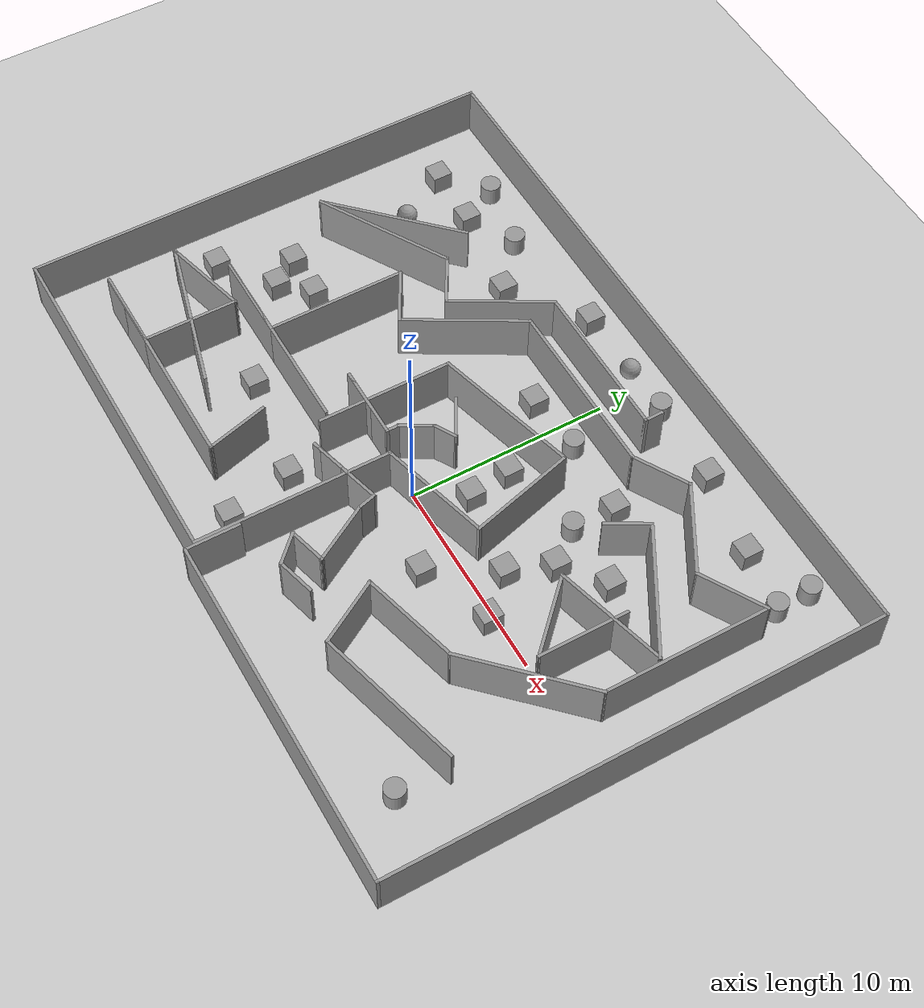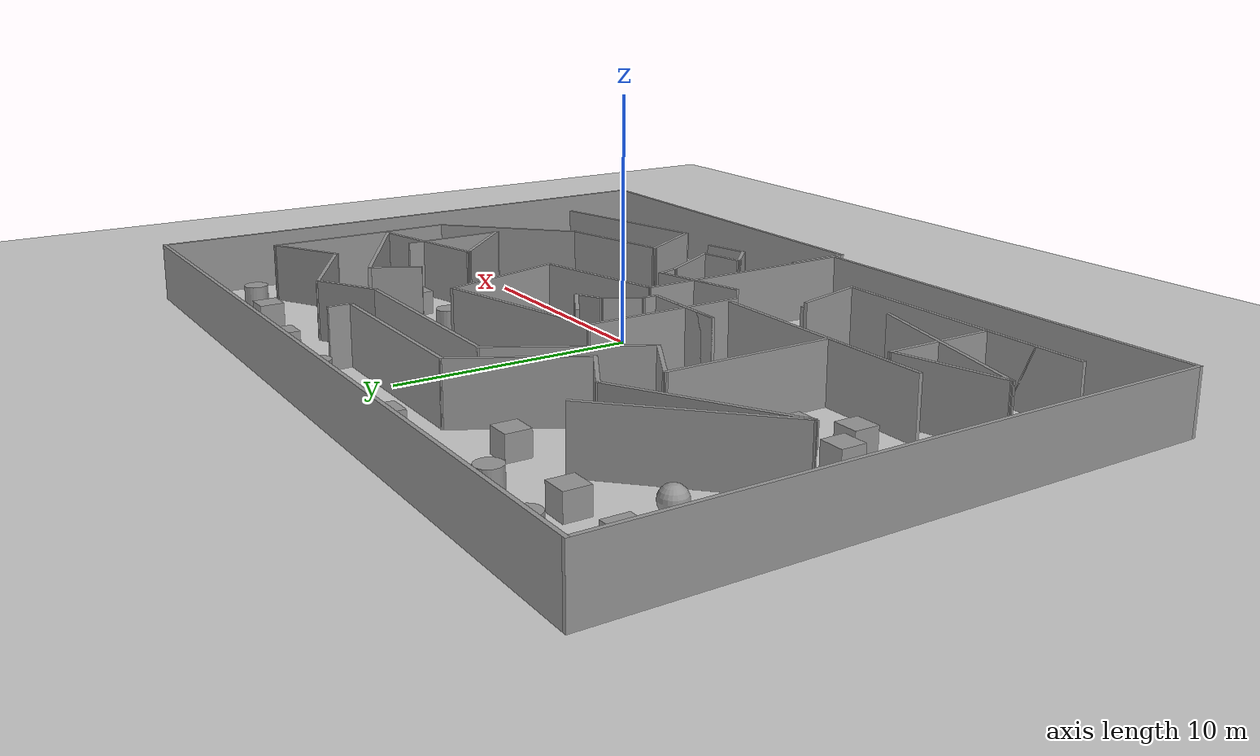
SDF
<sdf version="1.7">
 <world name="default">
  <light name="sun" type="directional">
   <pose>0 0 10 0 -0 0</pose>
   <diffuse>0.8 0.8 0.8 1</diffuse>
   <specular>0.2 0.2 0.2 1</specular>
   <attenuation>
    <range>1000</range>
    <constant>0.9</constant>
    <linear>0.01</linear>
    <quadratic>0.001</quadratic>
   </attenuation>
   <direction>-0.5 0.1 -0.9</direction>
   <spot><inner_angle>0</inner_angle><outer_angle>0</outer_angle><falloff>0</falloff></spot>
  </light>
  <model name="ground_plane">
   <static>1</static>
   <link name="link">
    <collision name="collision">
     <geometry><plane><normal>0 0 1</normal><size>100 100</size></plane></geometry>
     <surface><friction><ode><mu>100</mu><mu2>50</mu2></ode></friction></surface>
    </collision>
    <visual name="visual">
     <cast_shadows>0</cast_shadows>
     <geometry><plane><normal>0 0 1</normal><size>100 100</size></plane></geometry>
     <material>
      <script><uri>file://media/materials/scripts/gazebo.material</uri><name>Gazebo/Grey</name></script>
     </material>
    </visual>
   </link>
  </model>
  <gravity>0 0 -9.8</gravity>
  <magnetic_field>6e-06 2.3e-05 -4.2e-05</magnetic_field>
  <atmosphere type="adiabatic"/>
  <physics name="default_physics" default="0" type="ode">
   <max_step_size>0.001</max_step_size>
   <real_time_factor>1</real_time_factor>
   <real_time_update_rate>1000</real_time_update_rate>
  </physics>
  <scene><ambient>0.4 0.4 0.4 1</ambient><background>0.7 0.7 0.7 1</background><shadows>1</shadows></scene>
  <spherical_coordinates>
   <surface_model>EARTH_WGS84</surface_model>
   <latitude_deg>0</latitude_deg>
   <longitude_deg>0</longitude_deg>
   <elevation>0</elevation>
   <heading_deg>0</heading_deg>
  </spherical_coordinates>
  <model name="Untitled">
   <pose>-1.11495 1.54023 0 0 -0 0</pose>
   <link name="Wall_0">
    <collision name="Wall_0_Collision">
     <geometry><box><size>6.75 0.15 2.5</size></box></geometry>
     <pose>0 0 1.25 0 -0 0</pose>
    </collision>
    <visual name="Wall_0_Visual">
     <pose>0 0 1.25 0 -0 0</pose>
     <geometry><box><size>6.75 0.15 2.5</size></box></geometry>
     <material>
      <script><uri>file://media/materials/scripts/gazebo.material</uri><name>Gazebo/Grey</name></script>
      <ambient>1 1 1 1</ambient>
     </material>
     <meta><layer>0</layer></meta>
    </visual>
    <pose>-3.02505 -0.66023 0 0 -0 1.5708</pose>
   </link>
   <link name="Wall_1">
    <collision name="Wall_1_Collision">
     <geometry><box><size>7.5 0.15 2.5</size></box></geometry>
     <pose>0 0 1.25 0 -0 0</pose>
    </collision>
    <visual name="Wall_1_Visual">
     <pose>0 0 1.25 0 -0 0</pose>
     <geometry><box><size>7.5 0.15 2.5</size></box></geometry>
     <material>
      <script><uri>file://media/materials/scripts/gazebo.material</uri><name>Gazebo/Grey</name></script>
      <ambient>1 1 1 1</ambient>
     </material>
     <meta><layer>0</layer></meta>
    </visual>
    <pose>0.524725 3.59093 0 0 -0 0.261799</pose>
   </link>
   <link name="Wall_10">
    <collision name="Wall_10_Collision">
     <geometry><box><size>2.75 0.15 2.5</size></box></geometry>
     <pose>0 0 1.25 0 -0 0</pose>
    </collision>
    <visual name="Wall_10_Visual">
     <pose>0 0 1.25 0 -0 0</pose>
     <geometry><box><size>2.75 0.15 2.5</size></box></geometry>
     <material>
      <script><uri>file://media/materials/scripts/gazebo.material</uri><name>Gazebo/Grey</name></script>
      <ambient>1 1 1 1</ambient>
     </material>
     <meta><layer>0</layer></meta>
    </visual>
    <pose>0.199999 -10.875 0 0 -0 1.5708</pose>
   </link>
   <link name="Wall_12">
    <collision name="Wall_12_Collision">
     <geometry><box><size>10 0.15 2.5</size></box></geometry>
     <pose>0 0 1.25 0 -0 0</pose>
    </collision>
    <visual name="Wall_12_Visual">
     <pose>0 0 1.25 0 -0 0</pose>
     <geometry><box><size>10 0.15 2.5</size></box></geometry>
     <material>
      <script><uri>file://media/materials/scripts/gazebo.material</uri><name>Gazebo/Grey</name></script>
      <ambient>1 1 1 1</ambient>
     </material>
     <meta><layer>0</layer></meta>
    </visual>
    <pose>-8.27915 -3.51346 0 0 -0 3.14159</pose>
   </link>
   <link name="Wall_13">
    <collision name="Wall_13_Collision">
     <geometry><box><size>4.5 0.15 2.5</size></box></geometry>
     <pose>0 0 1.25 0 -0 0</pose>
    </collision>
    <visual name="Wall_13_Visual">
     <pose>0 0 1.25 0 -0 0</pose>
     <geometry><box><size>4.5 0.15 2.5</size></box></geometry>
     <material>
      <script><uri>file://media/materials/scripts/gazebo.material</uri><name>Gazebo/Grey</name></script>
      <ambient>1 1 1 1</ambient>
     </material>
     <meta><layer>0</layer></meta>
    </visual>
    <pose>-11.0291 -3.51346 0 0 -0 0</pose>
   </link>
   <link name="Wall_14">
    <collision name="Wall_14_Collision">
     <geometry><box><size>7 0.15 2.5</size></box></geometry>
     <pose>0 0 1.25 0 -0 0</pose>
    </collision>
    <visual name="Wall_14_Visual">
     <pose>0 0 1.25 0 -0 0</pose>
     <geometry><box><size>7 0.15 2.5</size></box></geometry>
     <material>
      <script><uri>file://media/materials/scripts/gazebo.material</uri><name>Gazebo/Grey</name></script>
      <ambient>1 1 1 1</ambient>
     </material>
     <meta><layer>0</layer></meta>
    </visual>
    <pose>-8.85415 -0.088459 0 0 -0 1.5708</pose>
   </link>
   <link name="Wall_15">
    <collision name="Wall_15_Collision">
     <geometry><box><size>3 0.15 2.5</size></box></geometry>
     <pose>0 0 1.25 0 -0 0</pose>
    </collision>
    <visual name="Wall_15_Visual">
     <pose>0 0 1.25 0 -0 0</pose>
     <geometry><box><size>3 0.15 2.5</size></box></geometry>
     <material>
      <script><uri>file://media/materials/scripts/gazebo.material</uri><name>Gazebo/Grey</name></script>
      <ambient>1 1 1 1</ambient>
     </material>
     <meta><layer>0</layer></meta>
    </visual>
    <pose>-7.62006 2.62404 0 0 -0 -0.523599</pose>
   </link>
   <link name="Wall_16">
    <collision name="Wall_16_Collision">
     <geometry><box><size>6.25 0.15 2.5</size></box></geometry>
     <pose>0 0 1.25 0 -0 0</pose>
    </collision>
    <visual name="Wall_16_Visual">
     <pose>0 0 1.25 0 -0 0</pose>
     <geometry><box><size>6.25 0.15 2.5</size></box></geometry>
     <material>
      <script><uri>file://media/materials/scripts/gazebo.material</uri><name>Gazebo/Grey</name></script>
      <ambient>1 1 1 1</ambient>
     </material>
     <meta><layer>0</layer></meta>
    </visual>
    <pose>-4.86097 4.55292 0 0 -0 1.0472</pose>
   </link>
   <link name="Wall_17">
    <collision name="Wall_17_Collision">
     <geometry><box><size>9 0.15 2.5</size></box></geometry>
     <pose>0 0 1.25 0 -0 0</pose>
    </collision>
    <visual name="Wall_17_Visual">
     <pose>0 0 1.25 0 -0 0</pose>
     <geometry><box><size>9 0.15 2.5</size></box></geometry>
     <material>
      <script><uri>file://media/materials/scripts/gazebo.material</uri><name>Gazebo/Grey</name></script>
      <ambient>1 1 1 1</ambient>
     </material>
     <meta><layer>0</layer></meta>
    </visual>
    <pose>1.08902 7.1943 0 0 -0 0</pose>
   </link>
   <link name="Wall_18">
    <collision name="Wall_18_Collision">
     <geometry><box><size>3 0.15 2.5</size></box></geometry>
     <pose>0 0 1.25 0 -0 0</pose>
    </collision>
    <visual name="Wall_18_Visual">
     <pose>0 0 1.25 0 -0 0</pose>
     <geometry><box><size>3 0.15 2.5</size></box></geometry>
     <material>
      <script><uri>file://media/materials/scripts/gazebo.material</uri><name>Gazebo/Grey</name></script>
      <ambient>1 1 1 1</ambient>
     </material>
     <meta><layer>0</layer></meta>
    </visual>
    <pose>6.74811 7.9068 0 0 -0 0.523599</pose>
   </link>
   <link name="Wall_19">
    <collision name="Wall_19_Collision">
     <geometry><box><size>4.75 0.15 2.5</size></box></geometry>
     <pose>0 0 1.25 0 -0 0</pose>
    </collision>
    <visual name="Wall_19_Visual">
     <pose>0 0 1.25 0 -0 0</pose>
     <geometry><box><size>4.75 0.15 2.5</size></box></geometry>
     <material>
      <script><uri>file://media/materials/scripts/gazebo.material</uri><name>Gazebo/Grey</name></script>
      <ambient>1 1 1 1</ambient>
     </material>
     <meta><layer>0</layer></meta>
    </visual>
    <pose>9.97406 7.4693 0 0 -0 -0.523599</pose>
   </link>
   <link name="Wall_2">
    <collision name="Wall_2_Collision">
     <geometry><box><size>5.5 0.15 2.5</size></box></geometry>
     <pose>0 0 1.25 0 -0 0</pose>
    </collision>
    <visual name="Wall_2_Visual">
     <pose>0 0 1.25 0 -0 0</pose>
     <geometry><box><size>5.5 0.15 2.5</size></box></geometry>
     <material>
      <script><uri>file://media/materials/scripts/gazebo.material</uri><name>Gazebo/Grey</name></script>
      <ambient>1 1 1 1</ambient>
     </material>
     <meta><layer>0</layer></meta>
    </visual>
    <pose>4.76684 1.95824 0 0 -0 -1.309</pose>
   </link>
   <link name="Wall_20">
    <collision name="Wall_20_Collision">
     <geometry><box><size>3.5 0.15 2.5</size></box></geometry>
     <pose>0 0 1.25 0 -0 0</pose>
    </collision>
    <visual name="Wall_20_Visual">
     <pose>0 0 1.25 0 -0 0</pose>
     <geometry><box><size>3.5 0.15 2.5</size></box></geometry>
     <material>
      <script><uri>file://media/materials/scripts/gazebo.material</uri><name>Gazebo/Grey</name></script>
      <ambient>1 1 1 1</ambient>
     </material>
     <meta><layer>0</layer></meta>
    </visual>
    <pose>13.4165 7.1568 0 0 -0 0.523599</pose>
   </link>
   <link name="Wall_21">
    <collision name="Wall_21_Collision">
     <geometry><box><size>8.25 0.15 2.5</size></box></geometry>
     <pose>0 0 1.25 0 -0 0</pose>
    </collision>
    <visual name="Wall_21_Visual">
     <pose>0 0 1.25 0 -0 0</pose>
     <geometry><box><size>8.25 0.15 2.5</size></box></geometry>
     <material>
      <script><uri>file://media/materials/scripts/gazebo.material</uri><name>Gazebo/Grey</name></script>
      <ambient>1 1 1 1</ambient>
     </material>
     <meta><layer>0</layer></meta>
    </visual>
    <pose>14.8671 3.9443 0 0 -0 -1.5708</pose>
   </link>
   <link name="Wall_22">
    <collision name="Wall_22_Collision">
     <geometry><box><size>6.75 0.15 2.5</size></box></geometry>
     <pose>0 0 1.25 0 -0 0</pose>
    </collision>
    <visual name="Wall_22_Visual">
     <pose>0 0 1.25 0 -0 0</pose>
     <geometry><box><size>6.75 0.15 2.5</size></box></geometry>
     <material>
      <script><uri>file://media/materials/scripts/gazebo.material</uri><name>Gazebo/Grey</name></script>
      <ambient>1 1 1 1</ambient>
     </material>
     <meta><layer>0</layer></meta>
    </visual>
    <pose>12.5336 -2.43916 0 0 -0 -2.35619</pose>
   </link>
   <link name="Wall_23">
    <collision name="Wall_23_Collision">
     <geometry><box><size>5 0.15 2.5</size></box></geometry>
     <pose>0 0 1.25 0 -0 0</pose>
    </collision>
    <visual name="Wall_23_Visual">
     <pose>0 0 1.25 0 -0 0</pose>
     <geometry><box><size>5 0.15 2.5</size></box></geometry>
     <material>
      <script><uri>file://media/materials/scripts/gazebo.material</uri><name>Gazebo/Grey</name></script>
      <ambient>1 1 1 1</ambient>
     </material>
     <meta><layer>0</layer></meta>
    </visual>
    <pose>7.85783 -5.40024 0 0 -0 -2.87979</pose>
   </link>
   <link name="Wall_24">
    <collision name="Wall_24_Collision">
     <geometry><box><size>3.5 0.15 2.5</size></box></geometry>
     <pose>0 0 1.25 0 -0 0</pose>
    </collision>
    <visual name="Wall_24_Visual">
     <pose>0 0 1.25 0 -0 0</pose>
     <geometry><box><size>3.5 0.15 2.5</size></box></geometry>
     <material>
      <script><uri>file://media/materials/scripts/gazebo.material</uri><name>Gazebo/Grey</name></script>
      <ambient>1 1 1 1</ambient>
     </material>
     <meta><layer>0</layer></meta>
    </visual>
    <pose>6.35295 -7.47847 0 0 -0 -1.0472</pose>
   </link>
   <link name="Wall_25">
    <collision name="Wall_25_Collision">
     <geometry><box><size>7.5 0.15 2.5</size></box></geometry>
     <pose>0 0 1.25 0 -0 0</pose>
    </collision>
    <visual name="Wall_25_Visual">
     <pose>0 0 1.25 0 -0 0</pose>
     <geometry><box><size>7.5 0.15 2.5</size></box></geometry>
     <material>
      <script><uri>file://media/materials/scripts/gazebo.material</uri><name>Gazebo/Grey</name></script>
      <ambient>1 1 1 1</ambient>
     </material>
     <meta><layer>0</layer></meta>
    </visual>
    <pose>10.7402 -7.97791 0 0 -0 0.261799</pose>
   </link>
   <link name="Wall_3">
    <collision name="Wall_3_Collision">
     <geometry><box><size>5.75 0.15 2.5</size></box></geometry>
     <pose>0 0 1.25 0 -0 0</pose>
    </collision>
    <visual name="Wall_3_Visual">
     <pose>0 0 1.25 0 -0 0</pose>
     <geometry><box><size>5.75 0.15 2.5</size></box></geometry>
     <material>
      <script><uri>file://media/materials/scripts/gazebo.material</uri><name>Gazebo/Grey</name></script>
      <ambient>1 1 1 1</ambient>
     </material>
     <meta><layer>0</layer></meta>
    </visual>
    <pose>2.75459 -1.35031 0 0 -0 -2.87979</pose>
   </link>
   <link name="Wall_4">
    <collision name="Wall_4_Collision">
     <geometry><box><size>9.75 0.15 2.5</size></box></geometry>
     <pose>0 0 1.25 0 -0 0</pose>
    </collision>
    <visual name="Wall_4_Visual">
     <pose>0 0 1.25 0 -0 0</pose>
     <geometry><box><size>9.75 0.15 2.5</size></box></geometry>
     <material>
      <script><uri>file://media/materials/scripts/gazebo.material</uri><name>Gazebo/Grey</name></script>
      <ambient>1 1 1 1</ambient>
     </material>
     <meta><layer>0</layer></meta>
    </visual>
    <pose>0.049999 -6.875 0 0 -0 -1.5708</pose>
   </link>
   <link name="Wall_5">
    <collision name="Wall_5_Collision">
     <geometry><box><size>17.75 0.15 2.5</size></box></geometry>
     <pose>0 0 1.25 0 -0 0</pose>
    </collision>
    <visual name="Wall_5_Visual">
     <pose>0 0 1.25 0 -0 0</pose>
     <geometry><box><size>17.75 0.15 2.5</size></box></geometry>
     <material>
      <script><uri>file://media/materials/scripts/gazebo.material</uri><name>Gazebo/Grey</name></script>
      <ambient>1 1 1 1</ambient>
     </material>
     <meta><layer>0</layer></meta>
    </visual>
    <pose>-8.75 -11.675 0 0 -0 3.14159</pose>
   </link>
   <link name="Wall_6">
    <collision name="Wall_6_Collision">
     <geometry><box><size>24 0.15 2.5</size></box></geometry>
     <pose>0 0 1.25 0 -0 0</pose>
    </collision>
    <visual name="Wall_6_Visual">
     <pose>0 0 1.25 0 -0 0</pose>
     <geometry><box><size>24 0.15 2.5</size></box></geometry>
     <material>
      <script><uri>file://media/materials/scripts/gazebo.material</uri><name>Gazebo/Grey</name></script>
      <ambient>1 1 1 1</ambient>
     </material>
     <meta><layer>0</layer></meta>
    </visual>
    <pose>-17.55 0.25 0 0 -0 1.5708</pose>
   </link>
   <link name="Wall_7">
    <collision name="Wall_7_Collision">
     <geometry><box><size>35.25 0.15 2.5</size></box></geometry>
     <pose>0 0 1.25 0 -0 0</pose>
    </collision>
    <visual name="Wall_7_Visual">
     <pose>0 0 1.25 0 -0 0</pose>
     <geometry><box><size>35.25 0.15 2.5</size></box></geometry>
     <material>
      <script><uri>file://media/materials/scripts/gazebo.material</uri><name>Gazebo/Grey</name></script>
      <ambient>1 1 1 1</ambient>
     </material>
     <meta><layer>0</layer></meta>
    </visual>
    <pose>-1e-06 12.175 0 0 -0 0</pose>
   </link>
   <link name="Wall_8">
    <collision name="Wall_8_Collision">
     <geometry><box><size>24.5 0.15 2.5</size></box></geometry>
     <pose>0 0 1.25 0 -0 0</pose>
    </collision>
    <visual name="Wall_8_Visual">
     <pose>0 0 1.25 0 -0 0</pose>
     <geometry><box><size>24.5 0.15 2.5</size></box></geometry>
     <material>
      <script><uri>file://media/materials/scripts/gazebo.material</uri><name>Gazebo/Grey</name></script>
      <ambient>1 1 1 1</ambient>
     </material>
     <meta><layer>0</layer></meta>
    </visual>
    <pose>17.55 0 0 0 -0 -1.5708</pose>
   </link>
   <link name="Wall_9">
    <collision name="Wall_9_Collision">
     <geometry><box><size>17.5 0.15 2.5</size></box></geometry>
     <pose>0 0 1.25 0 -0 0</pose>
    </collision>
    <visual name="Wall_9_Visual">
     <pose>0 0 1.25 0 -0 0</pose>
     <geometry><box><size>17.5 0.15 2.5</size></box></geometry>
     <material>
      <script><uri>file://media/materials/scripts/gazebo.material</uri><name>Gazebo/Grey</name></script>
      <ambient>1 1 1 1</ambient>
     </material>
     <meta><layer>0</layer></meta>
    </visual>
    <pose>8.875 -12.175 0 0 -0 3.14159</pose>
   </link>
   <static>1</static>
  </model>
  <model name="Untitled_0">
   <pose>-1.45559 1.90473 0 0 -0 0</pose>
   <link name="Wall_0">
    <collision name="Wall_0_Collision">
     <geometry><box><size>1.5 0.15 2.5</size></box></geometry>
     <pose>0 0 1.25 0 -0 0</pose>
    </collision>
    <visual name="Wall_0_Visual">
     <pose>0 0 1.25 0 -0 0</pose>
     <geometry><box><size>1.5 0.15 2.5</size></box></geometry>
     <material>
      <script><uri>file://media/materials/scripts/gazebo.material</uri><name>Gazebo/Grey</name></script>
      <ambient>1 1 1 1</ambient>
     </material>
     <meta><layer>0</layer></meta>
    </visual>
    <pose>-0.662414 -4.87002 0 0 -0 0.261799</pose>
   </link>
   <link name="Wall_11">
    <collision name="Wall_11_Collision">
     <geometry><box><size>2.25 0.15 2.5</size></box></geometry>
     <pose>0 0 1.25 0 -0 0</pose>
    </collision>
    <visual name="Wall_11_Visual">
     <pose>0 0 1.25 0 -0 0</pose>
     <geometry><box><size>2.25 0.15 2.5</size></box></geometry>
     <material>
      <script><uri>file://media/materials/scripts/gazebo.material</uri><name>Gazebo/Grey</name></script>
      <ambient>1 1 1 1</ambient>
     </material>
     <meta><layer>0</layer></meta>
    </visual>
    <pose>-3.27996 -1.98188 0 0 -0 3.14159</pose>
   </link>
   <link name="Wall_12">
    <collision name="Wall_12_Collision">
     <geometry><box><size>3.75 0.15 2.5</size></box></geometry>
     <pose>0 0 1.25 0 -0 0</pose>
    </collision>
    <visual name="Wall_12_Visual">
     <pose>0 0 1.25 0 -0 0</pose>
     <geometry><box><size>3.75 0.15 2.5</size></box></geometry>
     <material>
      <script><uri>file://media/materials/scripts/gazebo.material</uri><name>Gazebo/Grey</name></script>
      <ambient>1 1 1 1</ambient>
     </material>
     <meta><layer>0</layer></meta>
    </visual>
    <pose>-2.52996 -1.98188 0 0 -0 0</pose>
   </link>
   <link name="Wall_13">
    <collision name="Wall_13_Collision">
     <geometry><box><size>0.75 0.15 2.5</size></box></geometry>
     <pose>0 0 1.25 0 -0 0</pose>
    </collision>
    <visual name="Wall_13_Visual">
     <pose>0 0 1.25 0 -0 0</pose>
     <geometry><box><size>0.75 0.15 2.5</size></box></geometry>
     <material>
      <script><uri>file://media/materials/scripts/gazebo.material</uri><name>Gazebo/Grey</name></script>
      <ambient>1 1 1 1</ambient>
     </material>
     <meta><layer>0</layer></meta>
    </visual>
    <pose>-0.729962 -1.68188 0 0 -0 1.5708</pose>
   </link>
   <link name="Wall_14">
    <collision name="Wall_14_Collision">
     <geometry><box><size>1.75 0.15 2.5</size></box></geometry>
     <pose>0 0 1.25 0 -0 0</pose>
    </collision>
    <visual name="Wall_14_Visual">
     <pose>0 0 1.25 0 -0 0</pose>
     <geometry><box><size>1.75 0.15 2.5</size></box></geometry>
     <material>
      <script><uri>file://media/materials/scripts/gazebo.material</uri><name>Gazebo/Grey</name></script>
      <ambient>1 1 1 1</ambient>
     </material>
     <meta><layer>0</layer></meta>
    </visual>
    <pose>-0.329962 -0.689056 0 0 -0 1.0472</pose>
   </link>
   <link name="Wall_15">
    <collision name="Wall_15_Collision">
     <geometry><box><size>1.25 0.15 2.5</size></box></geometry>
     <pose>0 0 1.25 0 -0 0</pose>
    </collision>
    <visual name="Wall_15_Visual">
     <pose>0 0 1.25 0 -0 0</pose>
     <geometry><box><size>1.25 0.15 2.5</size></box></geometry>
     <material>
      <script><uri>file://media/materials/scripts/gazebo.material</uri><name>Gazebo/Grey</name></script>
      <ambient>1 1 1 1</ambient>
     </material>
     <meta><layer>0</layer></meta>
    </visual>
    <pose>0.546352 0.278765 0 0 -0 0.523599</pose>
   </link>
   <link name="Wall_16">
    <collision name="Wall_16_Collision">
     <geometry><box><size>2.25 0.15 2.5</size></box></geometry>
     <pose>0 0 1.25 0 -0 0</pose>
    </collision>
    <visual name="Wall_16_Visual">
     <pose>0 0 1.25 0 -0 0</pose>
     <geometry><box><size>2.25 0.15 2.5</size></box></geometry>
     <material>
      <script><uri>file://media/materials/scripts/gazebo.material</uri><name>Gazebo/Grey</name></script>
      <ambient>1 1 1 1</ambient>
     </material>
     <meta><layer>0</layer></meta>
    </visual>
    <pose>0.113339 1.07876 0 0 -0 2.61799</pose>
   </link>
   <link name="Wall_18">
    <collision name="Wall_18_Collision">
     <geometry><box><size>8 0.15 2.5</size></box></geometry>
     <pose>0 0 1.25 0 -0 0</pose>
    </collision>
    <visual name="Wall_18_Visual">
     <pose>0 0 1.25 0 -0 0</pose>
     <geometry><box><size>8 0.15 2.5</size></box></geometry>
     <material>
      <script><uri>file://media/materials/scripts/gazebo.material</uri><name>Gazebo/Grey</name></script>
      <ambient>1 1 1 1</ambient>
     </material>
     <meta><layer>0</layer></meta>
    </visual>
    <pose>-11.185 -6.78449 0 0 -0 2.87979</pose>
   </link>
   <link name="Wall_19">
    <collision name="Wall_19_Collision">
     <geometry><box><size>4.5 0.15 2.5</size></box></geometry>
     <pose>0 0 1.25 0 -0 0</pose>
    </collision>
    <visual name="Wall_19_Visual">
     <pose>0 0 1.25 0 -0 0</pose>
     <geometry><box><size>4.5 0.15 2.5</size></box></geometry>
     <material>
      <script><uri>file://media/materials/scripts/gazebo.material</uri><name>Gazebo/Grey</name></script>
      <ambient>1 1 1 1</ambient>
     </material>
     <meta><layer>0</layer></meta>
    </visual>
    <pose>-12.8754 -5.2057 0 0 -0 0.261799</pose>
   </link>
   <link name="Wall_2">
    <collision name="Wall_2_Collision">
     <geometry><box><size>0.5 0.15 2.5</size></box></geometry>
     <pose>0 0 1.25 0 -0 0</pose>
    </collision>
    <visual name="Wall_2_Visual">
     <pose>0 0 1.25 0 -0 0</pose>
     <geometry><box><size>0.5 0.15 2.5</size></box></geometry>
     <material>
      <script><uri>file://media/materials/scripts/gazebo.material</uri><name>Gazebo/Grey</name></script>
      <ambient>1 1 1 1</ambient>
     </material>
     <meta><layer>0</layer></meta>
    </visual>
    <pose>-1.48345 -5.09002 0 0 -0 -2.87979</pose>
   </link>
   <link name="Wall_20">
    <collision name="Wall_20_Collision">
     <geometry><box><size>4.75 0.15 2.5</size></box></geometry>
     <pose>0 0 1.25 0 -0 0</pose>
    </collision>
    <visual name="Wall_20_Visual">
     <pose>0 0 1.25 0 -0 0</pose>
     <geometry><box><size>4.75 0.15 2.5</size></box></geometry>
     <material>
      <script><uri>file://media/materials/scripts/gazebo.material</uri><name>Gazebo/Grey</name></script>
      <ambient>1 1 1 1</ambient>
     </material>
     <meta><layer>0</layer></meta>
    </visual>
    <pose>-10.7745 -6.94277 0 0 -0 -1.5708</pose>
   </link>
   <link name="Wall_21">
    <collision name="Wall_21_Collision">
     <geometry><box><size>4.25 0.15 2.5</size></box></geometry>
     <pose>0 0 1.25 0 -0 0</pose>
    </collision>
    <visual name="Wall_21_Visual">
     <pose>0 0 1.25 0 -0 0</pose>
     <geometry><box><size>4.25 0.15 2.5</size></box></geometry>
     <material>
      <script><uri>file://media/materials/scripts/gazebo.material</uri><name>Gazebo/Grey</name></script>
      <ambient>1 1 1 1</ambient>
     </material>
     <meta><layer>0</layer></meta>
    </visual>
    <pose>-12.8245 -9.24277 0 0 -0 3.14159</pose>
   </link>
   <link name="Wall_22">
    <collision name="Wall_22_Collision">
     <geometry><box><size>11.25 0.15 2.5</size></box></geometry>
     <pose>0 0 1.25 0 -0 0</pose>
    </collision>
    <visual name="Wall_22_Visual">
     <pose>0 0 1.25 0 -0 0</pose>
     <geometry><box><size>11.25 0.15 2.5</size></box></geometry>
     <material>
      <script><uri>file://media/materials/scripts/gazebo.material</uri><name>Gazebo/Grey</name></script>
      <ambient>1 1 1 1</ambient>
     </material>
     <meta><layer>0</layer></meta>
    </visual>
    <pose>-9.32452 -9.24277 0 0 -0 0</pose>
   </link>
   <link name="Wall_23">
    <collision name="Wall_23_Collision">
     <geometry><box><size>3.25 0.15 2.5</size></box></geometry>
     <pose>0 0 1.25 0 -0 0</pose>
    </collision>
    <visual name="Wall_23_Visual">
     <pose>0 0 1.25 0 -0 0</pose>
     <geometry><box><size>3.25 0.15 2.5</size></box></geometry>
     <material>
      <script><uri>file://media/materials/scripts/gazebo.material</uri><name>Gazebo/Grey</name></script>
      <ambient>1 1 1 1</ambient>
     </material>
     <meta><layer>0</layer></meta>
    </visual>
    <pose>-4.17569 -7.74558 0 0 -0 1.8326</pose>
   </link>
   <link name="Wall_25">
    <collision name="Wall_25_Collision">
     <geometry><box><size>7.5 0.15 2.5</size></box></geometry>
     <pose>0 0 1.25 0 -0 0</pose>
    </collision>
    <visual name="Wall_25_Visual">
     <pose>0 0 1.25 0 -0 0</pose>
     <geometry><box><size>7.5 0.15 2.5</size></box></geometry>
     <material>
      <script><uri>file://media/materials/scripts/gazebo.material</uri><name>Gazebo/Grey</name></script>
      <ambient>1 1 1 1</ambient>
     </material>
     <meta><layer>0</layer></meta>
    </visual>
    <pose>-11.758 4.36771 0 0 -0 -2.35619</pose>
   </link>
   <link name="Wall_26">
    <collision name="Wall_26_Collision">
     <geometry><box><size>7.25 0.15 2.5</size></box></geometry>
     <pose>0 0 1.25 0 -0 0</pose>
    </collision>
    <visual name="Wall_26_Visual">
     <pose>0 0 1.25 0 -0 0</pose>
     <geometry><box><size>7.25 0.15 2.5</size></box></geometry>
     <material>
      <script><uri>file://media/materials/scripts/gazebo.material</uri><name>Gazebo/Grey</name></script>
      <ambient>1 1 1 1</ambient>
     </material>
     <meta><layer>0</layer></meta>
    </visual>
    <pose>-11.2822 3.5441 0 0 -0 0.523599</pose>
   </link>
   <link name="Wall_27">
    <collision name="Wall_27_Collision">
     <geometry><box><size>2.75 0.15 2.5</size></box></geometry>
     <pose>0 0 1.25 0 -0 0</pose>
    </collision>
    <visual name="Wall_27_Visual">
     <pose>0 0 1.25 0 -0 0</pose>
     <geometry><box><size>2.75 0.15 2.5</size></box></geometry>
     <material>
      <script><uri>file://media/materials/scripts/gazebo.material</uri><name>Gazebo/Grey</name></script>
      <ambient>1 1 1 1</ambient>
     </material>
     <meta><layer>0</layer></meta>
    </visual>
    <pose>-7.08198 4.6691 0 0 -0 -0.523599</pose>
   </link>
   <link name="Wall_28">
    <collision name="Wall_28_Collision">
     <geometry><box><size>5.25 0.15 2.5</size></box></geometry>
     <pose>0 0 1.25 0 -0 0</pose>
    </collision>
    <visual name="Wall_28_Visual">
     <pose>0 0 1.25 0 -0 0</pose>
     <geometry><box><size>5.25 0.15 2.5</size></box></geometry>
     <material>
      <script><uri>file://media/materials/scripts/gazebo.material</uri><name>Gazebo/Grey</name></script>
      <ambient>1 1 1 1</ambient>
     </material>
     <meta><layer>0</layer></meta>
    </visual>
    <pose>-4.68115 6.22746 0 0 -0 1.0472</pose>
   </link>
   <link name="Wall_29">
    <collision name="Wall_29_Collision">
     <geometry><box><size>8 0.15 2.5</size></box></geometry>
     <pose>0 0 1.25 0 -0 0</pose>
    </collision>
    <visual name="Wall_29_Visual">
     <pose>0 0 1.25 0 -0 0</pose>
     <geometry><box><size>8 0.15 2.5</size></box></geometry>
     <material>
      <script><uri>file://media/materials/scripts/gazebo.material</uri><name>Gazebo/Grey</name></script>
      <ambient>1 1 1 1</ambient>
     </material>
     <meta><layer>0</layer></meta>
    </visual>
    <pose>0.518852 8.43583 0 0 -0 0</pose>
   </link>
   <link name="Wall_3">
    <collision name="Wall_3_Collision">
     <geometry><box><size>4 0.15 2.5</size></box></geometry>
     <pose>0 0 1.25 0 -0 0</pose>
    </collision>
    <visual name="Wall_3_Visual">
     <pose>0 0 1.25 0 -0 0</pose>
     <geometry><box><size>4 0.15 2.5</size></box></geometry>
     <material>
      <script><uri>file://media/materials/scripts/gazebo.material</uri><name>Gazebo/Grey</name></script>
      <ambient>1 1 1 1</ambient>
     </material>
     <meta><layer>0</layer></meta>
    </visual>
    <pose>0.20692 -4.63708 0 0 -0 0.261799</pose>
   </link>
   <link name="Wall_30">
    <collision name="Wall_30_Collision">
     <geometry><box><size>1 0.15 2.5</size></box></geometry>
     <pose>0 0 1.25 0 -0 0</pose>
    </collision>
    <visual name="Wall_30_Visual">
     <pose>0 0 1.25 0 -0 0</pose>
     <geometry><box><size>1 0.15 2.5</size></box></geometry>
     <material>
      <script><uri>file://media/materials/scripts/gazebo.material</uri><name>Gazebo/Grey</name></script>
      <ambient>1 1 1 1</ambient>
     </material>
     <meta><layer>0</layer></meta>
    </visual>
    <pose>4.44385 8.86083 0 0 -0 1.5708</pose>
   </link>
   <link name="Wall_32">
    <collision name="Wall_32_Collision">
     <geometry><box><size>4.5 0.15 2.5</size></box></geometry>
     <pose>0 0 1.25 0 -0 0</pose>
    </collision>
    <visual name="Wall_32_Visual">
     <pose>0 0 1.25 0 -0 0</pose>
     <geometry><box><size>4.5 0.15 2.5</size></box></geometry>
     <material>
      <script><uri>file://media/materials/scripts/gazebo.material</uri><name>Gazebo/Grey</name></script>
      <ambient>1 1 1 1</ambient>
     </material>
     <meta><layer>0</layer></meta>
    </visual>
    <pose>12.4557 0.190117 0 0 -0 -1.5708</pose>
   </link>
   <link name="Wall_33">
    <collision name="Wall_33_Collision">
     <geometry><box><size>4.25 0.15 2.5</size></box></geometry>
     <pose>0 0 1.25 0 -0 0</pose>
    </collision>
    <visual name="Wall_33_Visual">
     <pose>0 0 1.25 0 -0 0</pose>
     <geometry><box><size>4.25 0.15 2.5</size></box></geometry>
     <material>
      <script><uri>file://media/materials/scripts/gazebo.material</uri><name>Gazebo/Grey</name></script>
      <ambient>1 1 1 1</ambient>
     </material>
     <meta><layer>0</layer></meta>
    </visual>
    <pose>11.0061 -0.535314 0 0 -0 2.35619</pose>
   </link>
   <link name="Wall_34">
    <collision name="Wall_34_Collision">
     <geometry><box><size>5.75 0.15 2.5</size></box></geometry>
     <pose>0 0 1.25 0 -0 0</pose>
    </collision>
    <visual name="Wall_34_Visual">
     <pose>0 0 1.25 0 -0 0</pose>
     <geometry><box><size>5.75 0.15 2.5</size></box></geometry>
     <material>
      <script><uri>file://media/materials/scripts/gazebo.material</uri><name>Gazebo/Grey</name></script>
      <ambient>1 1 1 1</ambient>
     </material>
     <meta><layer>0</layer></meta>
    </visual>
    <pose>12.2611 1.63895 0 0 -0 0.261799</pose>
   </link>
   <link name="Wall_35">
    <collision name="Wall_35_Collision">
     <geometry><box><size>6.75 0.15 2.5</size></box></geometry>
     <pose>0 0 1.25 0 -0 0</pose>
    </collision>
    <visual name="Wall_35_Visual">
     <pose>0 0 1.25 0 -0 0</pose>
     <geometry><box><size>6.75 0.15 2.5</size></box></geometry>
     <material>
      <script><uri>file://media/materials/scripts/gazebo.material</uri><name>Gazebo/Grey</name></script>
      <ambient>1 1 1 1</ambient>
     </material>
     <meta><layer>0</layer></meta>
    </visual>
    <pose>12.1078 4.01364 0 0 -0 2.61799</pose>
   </link>
   <link name="Wall_36">
    <collision name="Wall_36_Collision">
     <geometry><box><size>2.25 0.15 2.5</size></box></geometry>
     <pose>0 0 1.25 0 -0 0</pose>
    </collision>
    <visual name="Wall_36_Visual">
     <pose>0 0 1.25 0 -0 0</pose>
     <geometry><box><size>2.25 0.15 2.5</size></box></geometry>
     <material>
      <script><uri>file://media/materials/scripts/gazebo.material</uri><name>Gazebo/Grey</name></script>
      <ambient>1 1 1 1</ambient>
     </material>
     <meta><layer>0</layer></meta>
    </visual>
    <pose>8.72493 4.75432 0 0 -0 -2.0944</pose>
   </link>
   <link name="Wall_4">
    <collision name="Wall_4_Collision">
     <geometry><box><size>1 0.15 2.5</size></box></geometry>
     <pose>0 0 1.25 0 -0 0</pose>
    </collision>
    <visual name="Wall_4_Visual">
     <pose>0 0 1.25 0 -0 0</pose>
     <geometry><box><size>1 0.15 2.5</size></box></geometry>
     <material>
      <script><uri>file://media/materials/scripts/gazebo.material</uri><name>Gazebo/Grey</name></script>
      <ambient>1 1 1 1</ambient>
     </material>
     <meta><layer>0</layer></meta>
    </visual>
    <pose>2.17632 -4.54938 0 0 -0 -1.309</pose>
   </link>
   <link name="Wall_6">
    <collision name="Wall_6_Collision">
     <geometry><box><size>3.25 0.15 2.5</size></box></geometry>
     <pose>0 0 1.25 0 -0 0</pose>
    </collision>
    <visual name="Wall_6_Visual">
     <pose>0 0 1.25 0 -0 0</pose>
     <geometry><box><size>3.25 0.15 2.5</size></box></geometry>
     <material>
      <script><uri>file://media/materials/scripts/gazebo.material</uri><name>Gazebo/Grey</name></script>
      <ambient>1 1 1 1</ambient>
     </material>
     <meta><layer>0</layer></meta>
    </visual>
    <pose>3.06132 -6.30223 0 0 -0 -1.0472</pose>
   </link>
   <link name="Wall_7">
    <collision name="Wall_7_Collision">
     <geometry><box><size>2 0.15 2.5</size></box></geometry>
     <pose>0 0 1.25 0 -0 0</pose>
    </collision>
    <visual name="Wall_7_Visual">
     <pose>0 0 1.25 0 -0 0</pose>
     <geometry><box><size>2 0.15 2.5</size></box></geometry>
     <material>
      <script><uri>file://media/materials/scripts/gazebo.material</uri><name>Gazebo/Grey</name></script>
      <ambient>1 1 1 1</ambient>
     </material>
     <meta><layer>0</layer></meta>
    </visual>
    <pose>2.94284 -7.88398 0 0 -0 -2.87979</pose>
   </link>
   <link name="Wall_8">
    <collision name="Wall_8_Collision">
     <geometry><box><size>1.75 0.15 2.5</size></box></geometry>
     <pose>0 0 1.25 0 -0 0</pose>
    </collision>
    <visual name="Wall_8_Visual">
     <pose>0 0 1.25 0 -0 0</pose>
     <geometry><box><size>1.75 0.15 2.5</size></box></geometry>
     <material>
      <script><uri>file://media/materials/scripts/gazebo.material</uri><name>Gazebo/Grey</name></script>
      <ambient>1 1 1 1</ambient>
     </material>
     <meta><layer>0</layer></meta>
    </visual>
    <pose>2.61505 -8.68908 0 0 -0 -0.785398</pose>
   </link>
   <link name="Wall_9">
    <collision name="Wall_9_Collision">
     <geometry><box><size>2 0.15 2.5</size></box></geometry>
     <pose>0 0 1.25 0 -0 0</pose>
    </collision>
    <visual name="Wall_9_Visual">
     <pose>0 0 1.25 0 -0 0</pose>
     <geometry><box><size>2 0.15 2.5</size></box></geometry>
     <material>
      <script><uri>file://media/materials/scripts/gazebo.material</uri><name>Gazebo/Grey</name></script>
      <ambient>1 1 1 1</ambient>
     </material>
     <meta><layer>0</layer></meta>
    </visual>
    <pose>4.07421 -9.01535 0 0 -0 0.261799</pose>
   </link>
   <static>1</static>
  </model>
  <model name="unit_box">
   <pose>5.67793 1.45477 0.499995 -1e-05 -0 -0</pose>
   <link name="link">
    <inertial>
     <mass>1</mass>
     <inertia>
      <ixx>0.166667</ixx>
      <ixy>0</ixy>
      <ixz>0</ixz>
      <iyy>0.166667</iyy>
      <iyz>0</iyz>
      <izz>0.166667</izz>
     </inertia>
    </inertial>
    <collision name="collision"><geometry><box><size>1 1 1</size></box></geometry></collision>
    <visual name="visual">
     <geometry><box><size>1 1 1</size></box></geometry>
     <material>
      <script><name>Gazebo/Grey</name><uri>file://media/materials/scripts/gazebo.material</uri></script>
     </material>
    </visual>
   </link>
  </model>
  <model name="unit_box_0">
   <pose>6.49008 3.59289 0.499995 0 1e-05 0</pose>
   <link name="link">
    <inertial>
     <mass>1</mass>
     <inertia>
      <ixx>0.166667</ixx>
      <ixy>0</ixy>
      <ixz>0</ixz>
      <iyy>0.166667</iyy>
      <iyz>0</iyz>
      <izz>0.166667</izz>
     </inertia>
    </inertial>
    <collision name="collision"><geometry><box><size>1 1 1</size></box></geometry></collision>
    <visual name="visual">
     <geometry><box><size>1 1 1</size></box></geometry>
     <material>
      <script><name>Gazebo/Grey</name><uri>file://media/materials/scripts/gazebo.material</uri></script>
     </material>
    </visual>
   </link>
  </model>
  <model name="unit_box_1">
   <pose>5.25436 7.41256 0.499995 -1e-05 -0 -0</pose>
   <link name="link">
    <inertial>
     <mass>1</mass>
     <inertia>
      <ixx>0.166667</ixx>
      <ixy>0</ixy>
      <ixz>0</ixz>
      <iyy>0.166667</iyy>
      <iyz>0</iyz>
      <izz>0.166667</izz>
     </inertia>
    </inertial>
    <collision name="collision"><geometry><box><size>1 1 1</size></box></geometry></collision>
    <visual name="visual">
     <geometry><box><size>1 1 1</size></box></geometry>
     <material>
      <script><name>Gazebo/Grey</name><uri>file://media/materials/scripts/gazebo.material</uri></script>
     </material>
    </visual>
   </link>
  </model>
  <model name="unit_box_2">
   <pose>8.51633 5.12677 0.499995 0 1e-05 0</pose>
   <link name="link">
    <inertial>
     <mass>1</mass>
     <inertia>
      <ixx>0.166667</ixx>
      <ixy>0</ixy>
      <ixz>0</ixz>
      <iyy>0.166667</iyy>
      <iyz>0</iyz>
      <izz>0.166667</izz>
     </inertia>
    </inertial>
    <collision name="collision"><geometry><box><size>1 1 1</size></box></geometry></collision>
    <visual name="visual">
     <geometry><box><size>1 1 1</size></box></geometry>
     <material>
      <script><name>Gazebo/Grey</name><uri>file://media/materials/scripts/gazebo.material</uri></script>
     </material>
    </visual>
   </link>
  </model>
  <model name="unit_box_3">
   <pose>7.36419 -0.342112 0.499995 -1e-05 -0 -0</pose>
   <link name="link">
    <inertial>
     <mass>1</mass>
     <inertia>
      <ixx>0.166667</ixx>
      <ixy>0</ixy>
      <ixz>0</ixz>
      <iyy>0.166667</iyy>
      <iyz>0</iyz>
      <izz>0.166667</izz>
     </inertia>
    </inertial>
    <collision name="collision"><geometry><box><size>1 1 1</size></box></geometry></collision>
    <visual name="visual">
     <geometry><box><size>1 1 1</size></box></geometry>
     <material>
      <script><name>Gazebo/Grey</name><uri>file://media/materials/scripts/gazebo.material</uri></script>
     </material>
    </visual>
   </link>
  </model>
  <model name="unit_box_4">
   <pose>1.48768 2.18651 0.499995 0 1e-05 0</pose>
   <link name="link">
    <inertial>
     <mass>1</mass>
     <inertia>
      <ixx>0.166667</ixx>
      <ixy>0</ixy>
      <ixz>0</ixz>
      <iyy>0.166667</iyy>
      <iyz>0</iyz>
      <izz>0.166667</izz>
     </inertia>
    </inertial>
    <collision name="collision"><geometry><box><size>1 1 1</size></box></geometry></collision>
    <visual name="visual">
     <geometry><box><size>1 1 1</size></box></geometry>
     <material>
      <script><name>Gazebo/Grey</name><uri>file://media/materials/scripts/gazebo.material</uri></script>
     </material>
    </visual>
   </link>
  </model>
  <model name="unit_box_5">
   <pose>1.22618 4.29002 0.499995 -1e-05 -0 -0</pose>
   <link name="link">
    <inertial>
     <mass>1</mass>
     <inertia>
      <ixx>0.166667</ixx>
      <ixy>0</ixy>
      <ixz>0</ixz>
      <iyy>0.166667</iyy>
      <iyz>0</iyz>
      <izz>0.166667</izz>
     </inertia>
    </inertial>
    <collision name="collision"><geometry><box><size>1 1 1</size></box></geometry></collision>
    <visual name="visual">
     <geometry><box><size>1 1 1</size></box></geometry>
     <material>
      <script><name>Gazebo/Grey</name><uri>file://media/materials/scripts/gazebo.material</uri></script>
     </material>
    </visual>
   </link>
  </model>
  <model name="unit_box_6">
   <pose>-1.58554 7.31516 0.499995 0 1e-05 0</pose>
   <link name="link">
    <inertial>
     <mass>1</mass>
     <inertia>
      <ixx>0.166667</ixx>
      <ixy>0</ixy>
      <ixz>0</ixz>
      <iyy>0.166667</iyy>
      <iyz>0</iyz>
      <izz>0.166667</izz>
     </inertia>
    </inertial>
    <collision name="collision"><geometry><box><size>1 1 1</size></box></geometry></collision>
    <visual name="visual">
     <geometry><box><size>1 1 1</size></box></geometry>
     <material>
      <script><name>Gazebo/Grey</name><uri>file://media/materials/scripts/gazebo.material</uri></script>
     </material>
    </visual>
   </link>
  </model>
  <model name="unit_box_7">
   <pose>3.82804 -1.69537 0.499995 -1e-05 -0 -0</pose>
   <link name="link">
    <inertial>
     <mass>1</mass>
     <inertia>
      <ixx>0.166667</ixx>
      <ixy>0</ixy>
      <ixz>0</ixz>
      <iyy>0.166667</iyy>
      <iyz>0</iyz>
      <izz>0.166667</izz>
     </inertia>
    </inertial>
    <collision name="collision"><geometry><box><size>1 1 1</size></box></geometry></collision>
    <visual name="visual">
     <geometry><box><size>1 1 1</size></box></geometry>
     <material>
      <script><name>Gazebo/Grey</name><uri>file://media/materials/scripts/gazebo.material</uri></script>
     </material>
    </visual>
   </link>
  </model>
  <model name="unit_box_8">
   <pose>-3.57538 -4.43613 0.499995 0 1e-05 0</pose>
   <link name="link">
    <inertial>
     <mass>1</mass>
     <inertia>
      <ixx>0.166667</ixx>
      <ixy>0</ixy>
      <ixz>0</ixz>
      <iyy>0.166667</iyy>
      <iyz>0</iyz>
      <izz>0.166667</izz>
     </inertia>
    </inertial>
    <collision name="collision"><geometry><box><size>1 1 1</size></box></geometry></collision>
    <visual name="visual">
     <geometry><box><size>1 1 1</size></box></geometry>
     <material>
      <script><name>Gazebo/Grey</name><uri>file://media/materials/scripts/gazebo.material</uri></script>
     </material>
    </visual>
   </link>
  </model>
  <model name="unit_box_9">
   <pose>-8.93538 -3.48475 0.499995 -1e-05 -0 -0</pose>
   <link name="link">
    <inertial>
     <mass>1</mass>
     <inertia>
      <ixx>0.166667</ixx>
      <ixy>0</ixy>
      <ixz>0</ixz>
      <iyy>0.166667</iyy>
      <iyz>0</iyz>
      <izz>0.166667</izz>
     </inertia>
    </inertial>
    <collision name="collision"><geometry><box><size>1 1 1</size></box></geometry></collision>
    <visual name="visual">
     <geometry><box><size>1 1 1</size></box></geometry>
     <material>
      <script><name>Gazebo/Grey</name><uri>file://media/materials/scripts/gazebo.material</uri></script>
     </material>
    </visual>
   </link>
  </model>
  <model name="unit_box_10">
   <pose>-2.79147 -7.77274 0.499995 0 1e-05 0</pose>
   <link name="link">
    <inertial>
     <mass>1</mass>
     <inertia>
      <ixx>0.166667</ixx>
      <ixy>0</ixy>
      <ixz>0</ixz>
      <iyy>0.166667</iyy>
      <iyz>0</iyz>
      <izz>0.166667</izz>
     </inertia>
    </inertial>
    <collision name="collision"><geometry><box><size>1 1 1</size></box></geometry></collision>
    <visual name="visual">
     <geometry><box><size>1 1 1</size></box></geometry>
     <material>
      <script><name>Gazebo/Grey</name><uri>file://media/materials/scripts/gazebo.material</uri></script>
     </material>
    </visual>
   </link>
  </model>
  <model name="unit_cylinder">
   <pose>12.6692 -7.82453 0.499993 -3e-06 2e-06 0</pose>
   <link name="link">
    <inertial>
     <mass>1</mass>
     <inertia><ixx>0.145833</ixx><ixy>0</ixy><ixz>0</ixz><iyy>0.145833</iyy><iyz>0</iyz><izz>0.125</izz></inertia>
    </inertial>
    <collision name="collision">
     <geometry><cylinder><radius>0.5</radius><length>1</length></cylinder></geometry>
    </collision>
    <visual name="visual">
     <geometry><cylinder><radius>0.5</radius><length>1</length></cylinder></geometry>
     <material>
      <script><name>Gazebo/Grey</name><uri>file://media/materials/scripts/gazebo.material</uri></script>
     </material>
    </visual>
   </link>
  </model>
  <model name="unit_cylinder_0">
   <pose>1.38831 7.6307 0.499998 3e-06 -2e-06 0</pose>
   <link name="link">
    <inertial>
     <mass>1</mass>
     <inertia><ixx>0.145833</ixx><ixy>0</ixy><ixz>0</ixz><iyy>0.145833</iyy><iyz>0</iyz><izz>0.125</izz></inertia>
    </inertial>
    <collision name="collision">
     <geometry><cylinder><radius>0.5</radius><length>1</length></cylinder></geometry>
    </collision>
    <visual name="visual">
     <geometry><cylinder><radius>0.5</radius><length>1</length></cylinder></geometry>
     <material>
      <script><name>Gazebo/Grey</name><uri>file://media/materials/scripts/gazebo.material</uri></script>
     </material>
    </visual>
   </link>
  </model>
  <model name="unit_cylinder_1">
   <pose>5.20591 5.24551 0.499998 3e-06 -2e-06 0</pose>
   <link name="link">
    <inertial>
     <mass>1</mass>
     <inertia><ixx>0.145833</ixx><ixy>0</ixy><ixz>0</ixz><iyy>0.145833</iyy><iyz>0</iyz><izz>0.125</izz></inertia>
    </inertial>
    <collision name="collision">
     <geometry><cylinder><radius>0.5</radius><length>1</length></cylinder></geometry>
    </collision>
    <visual name="visual">
     <geometry><cylinder><radius>0.5</radius><length>1</length></cylinder></geometry>
     <material>
      <script><name>Gazebo/Grey</name><uri>file://media/materials/scripts/gazebo.material</uri></script>
     </material>
    </visual>
   </link>
  </model>
  <model name="unit_cylinder_2">
   <pose>13.0545 10.7757 0.499993 -3e-06 3e-06 0</pose>
   <link name="link">
    <inertial>
     <mass>1</mass>
     <inertia><ixx>0.145833</ixx><ixy>0</ixy><ixz>0</ixz><iyy>0.145833</iyy><iyz>0</iyz><izz>0.125</izz></inertia>
    </inertial>
    <collision name="collision">
     <geometry><cylinder><radius>0.5</radius><length>1</length></cylinder></geometry>
    </collision>
    <visual name="visual">
     <geometry><cylinder><radius>0.5</radius><length>1</length></cylinder></geometry>
     <material>
      <script><name>Gazebo/Grey</name><uri>file://media/materials/scripts/gazebo.material</uri></script>
     </material>
    </visual>
   </link>
  </model>
  <model name="unit_box_11">
   <pose>10.084 11.2292 0.499995 -1e-05 -0 -0</pose>
   <link name="link">
    <inertial>
     <mass>1</mass>
     <inertia>
      <ixx>0.166667</ixx>
      <ixy>0</ixy>
      <ixz>0</ixz>
      <iyy>0.166667</iyy>
      <iyz>0</iyz>
      <izz>0.166667</izz>
     </inertia>
    </inertial>
    <collision name="collision"><geometry><box><size>1 1 1</size></box></geometry></collision>
    <visual name="visual">
     <geometry><box><size>1 1 1</size></box></geometry>
     <material>
      <script><name>Gazebo/Grey</name><uri>file://media/materials/scripts/gazebo.material</uri></script>
     </material>
    </visual>
   </link>
  </model>
  <model name="unit_cylinder_3">
   <pose>13.054 12.5134 0.499992 -3e-06 3e-06 0</pose>
   <link name="link">
    <inertial>
     <mass>1</mass>
     <inertia><ixx>0.145833</ixx><ixy>0</ixy><ixz>0</ixz><iyy>0.145833</iyy><iyz>0</iyz><izz>0.125</izz></inertia>
    </inertial>
    <collision name="collision">
     <geometry><cylinder><radius>0.5</radius><length>1</length></cylinder></geometry>
    </collision>
    <visual name="visual">
     <geometry><cylinder><radius>0.5</radius><length>1</length></cylinder></geometry>
     <material>
      <script><name>Gazebo/Grey</name><uri>file://media/materials/scripts/gazebo.material</uri></script>
     </material>
    </visual>
   </link>
  </model>
  <model name="unit_box_12">
   <pose>5.84263 12.0511 0.499995 -1e-05 -0 -0</pose>
   <link name="link">
    <inertial>
     <mass>1</mass>
     <inertia>
      <ixx>0.166667</ixx>
      <ixy>0</ixy>
      <ixz>0</ixz>
      <iyy>0.166667</iyy>
      <iyz>0</iyz>
      <izz>0.166667</izz>
     </inertia>
    </inertial>
    <collision name="collision"><geometry><box><size>1 1 1</size></box></geometry></collision>
    <visual name="visual">
     <geometry><box><size>1 1 1</size></box></geometry>
     <material>
      <script><name>Gazebo/Grey</name><uri>file://media/materials/scripts/gazebo.material</uri></script>
     </material>
    </visual>
   </link>
  </model>
  <model name="unit_cylinder_4">
   <pose>1.57797 12.2432 0.499992 -3e-06 3e-06 0</pose>
   <link name="link">
    <inertial>
     <mass>1</mass>
     <inertia><ixx>0.145833</ixx><ixy>0</ixy><ixz>0</ixz><iyy>0.145833</iyy><iyz>0</iyz><izz>0.125</izz></inertia>
    </inertial>
    <collision name="collision">
     <geometry><cylinder><radius>0.5</radius><length>1</length></cylinder></geometry>
    </collision>
    <visual name="visual">
     <geometry><cylinder><radius>0.5</radius><length>1</length></cylinder></geometry>
     <material>
      <script><name>Gazebo/Grey</name><uri>file://media/materials/scripts/gazebo.material</uri></script>
     </material>
    </visual>
   </link>
  </model>
  <model name="unit_sphere">
   <pose>-0.9932 12.2326 0.5 0 -0 0</pose>
   <link name="link">
    <inertial>
     <mass>1</mass>
     <inertia><ixx>0.1</ixx><ixy>0</ixy><ixz>0</ixz><iyy>0.1</iyy><iyz>0</iyz><izz>0.1</izz></inertia>
    </inertial>
    <collision name="collision"><geometry><sphere><radius>0.5</radius></sphere></geometry></collision>
    <visual name="visual">
     <geometry><sphere><radius>0.5</radius></sphere></geometry>
     <material>
      <script><name>Gazebo/Grey</name><uri>file://media/materials/scripts/gazebo.material</uri></script>
     </material>
    </visual>
   </link>
  </model>
  <model name="unit_box_13">
   <pose>-4.4695 12.1796 0.499995 0 1e-05 0</pose>
   <link name="link">
    <inertial>
     <mass>1</mass>
     <inertia>
      <ixx>0.166667</ixx>
      <ixy>0</ixy>
      <ixz>0</ixz>
      <iyy>0.166667</iyy>
      <iyz>0</iyz>
      <izz>0.166667</izz>
     </inertia>
    </inertial>
    <collision name="collision"><geometry><box><size>1 1 1</size></box></geometry></collision>
    <visual name="visual">
     <geometry><box><size>1 1 1</size></box></geometry>
     <material>
      <script><name>Gazebo/Grey</name><uri>file://media/materials/scripts/gazebo.material</uri></script>
     </material>
    </visual>
   </link>
  </model>
  <model name="unit_box_14">
   <pose>-8.17079 9.53171 0.499995 -1e-05 -0 -0</pose>
   <link name="link">
    <inertial>
     <mass>1</mass>
     <inertia>
      <ixx>0.166667</ixx>
      <ixy>0</ixy>
      <ixz>0</ixz>
      <iyy>0.166667</iyy>
      <iyz>0</iyz>
      <izz>0.166667</izz>
     </inertia>
    </inertial>
    <collision name="collision"><geometry><box><size>1 1 1</size></box></geometry></collision>
    <visual name="visual">
     <geometry><box><size>1 1 1</size></box></geometry>
     <material>
      <script><name>Gazebo/Grey</name><uri>file://media/materials/scripts/gazebo.material</uri></script>
     </material>
    </visual>
   </link>
  </model>
  <model name="unit_cylinder_5">
   <pose>-10.493 11.5351 0.499998 3e-06 -4e-06 0</pose>
   <link name="link">
    <inertial>
     <mass>1</mass>
     <inertia><ixx>0.145833</ixx><ixy>0</ixy><ixz>0</ixz><iyy>0.145833</iyy><iyz>0</iyz><izz>0.125</izz></inertia>
    </inertial>
    <collision name="collision">
     <geometry><cylinder><radius>0.5</radius><length>1</length></cylinder></geometry>
    </collision>
    <visual name="visual">
     <geometry><cylinder><radius>0.5</radius><length>1</length></cylinder></geometry>
     <material>
      <script><name>Gazebo/Grey</name><uri>file://media/materials/scripts/gazebo.material</uri></script>
     </material>
    </visual>
   </link>
  </model>
  <model name="unit_box_15">
   <pose>-12.9291 10.2389 0.499995 -1e-05 -0 -0</pose>
   <link name="link">
    <inertial>
     <mass>1</mass>
     <inertia>
      <ixx>0.166667</ixx>
      <ixy>0</ixy>
      <ixz>0</ixz>
      <iyy>0.166667</iyy>
      <iyz>0</iyz>
      <izz>0.166667</izz>
     </inertia>
    </inertial>
    <collision name="collision"><geometry><box><size>1 1 1</size></box></geometry></collision>
    <visual name="visual">
     <geometry><box><size>1 1 1</size></box></geometry>
     <material>
      <script><name>Gazebo/Grey</name><uri>file://media/materials/scripts/gazebo.material</uri></script>
     </material>
    </visual>
   </link>
  </model>
  <model name="unit_sphere_0">
   <pose>-14.5881 7.76326 0.5 0 -0 0</pose>
   <link name="link">
    <inertial>
     <mass>1</mass>
     <inertia><ixx>0.1</ixx><ixy>0</ixy><ixz>0</ixz><iyy>0.1</iyy><iyz>0</iyz><izz>0.1</izz></inertia>
    </inertial>
    <collision name="collision"><geometry><sphere><radius>0.5</radius></sphere></geometry></collision>
    <visual name="visual">
     <geometry><sphere><radius>0.5</radius></sphere></geometry>
     <material>
      <script><name>Gazebo/Grey</name><uri>file://media/materials/scripts/gazebo.material</uri></script>
     </material>
    </visual>
   </link>
  </model>
  <model name="unit_cylinder_6">
   <pose>-13.9785 12.1969 0.499992 -3e-06 -4e-06 -0</pose>
   <link name="link">
    <inertial>
     <mass>1</mass>
     <inertia><ixx>0.145833</ixx><ixy>0</ixy><ixz>0</ixz><iyy>0.145833</iyy><iyz>0</iyz><izz>0.125</izz></inertia>
    </inertial>
    <collision name="collision">
     <geometry><cylinder><radius>0.5</radius><length>1</length></cylinder></geometry>
    </collision>
    <visual name="visual">
     <geometry><cylinder><radius>0.5</radius><length>1</length></cylinder></geometry>
     <material>
      <script><name>Gazebo/Grey</name><uri>file://media/materials/scripts/gazebo.material</uri></script>
     </material>
    </visual>
   </link>
  </model>
  <model name="unit_box_16">
   <pose>-16.018 10.3404 0.499995 0 1e-05 0</pose>
   <link name="link">
    <inertial>
     <mass>1</mass>
     <inertia>
      <ixx>0.166667</ixx>
      <ixy>0</ixy>
      <ixz>0</ixz>
      <iyy>0.166667</iyy>
      <iyz>0</iyz>
      <izz>0.166667</izz>
     </inertia>
    </inertial>
    <collision name="collision"><geometry><box><size>1 1 1</size></box></geometry></collision>
    <visual name="visual">
     <geometry><box><size>1 1 1</size></box></geometry>
     <material>
      <script><name>Gazebo/Grey</name><uri>file://media/materials/scripts/gazebo.material</uri></script>
     </material>
    </visual>
   </link>
  </model>
  <model name="unit_box_17">
   <pose>-12.4331 1.42904 0.499995 -1e-05 -0 -0</pose>
   <link name="link">
    <inertial>
     <mass>1</mass>
     <inertia>
      <ixx>0.166667</ixx>
      <ixy>0</ixy>
      <ixz>0</ixz>
      <iyy>0.166667</iyy>
      <iyz>0</iyz>
      <izz>0.166667</izz>
     </inertia>
    </inertial>
    <collision name="collision"><geometry><box><size>1 1 1</size></box></geometry></collision>
    <visual name="visual">
     <geometry><box><size>1 1 1</size></box></geometry>
     <material>
      <script><name>Gazebo/Grey</name><uri>file://media/materials/scripts/gazebo.material</uri></script>
     </material>
    </visual>
   </link>
  </model>
  <model name="unit_box_18">
   <pose>-14.694 1.48962 0.499995 0 1e-05 0</pose>
   <link name="link">
    <inertial>
     <mass>1</mass>
     <inertia>
      <ixx>0.166667</ixx>
      <ixy>0</ixy>
      <ixz>0</ixz>
      <iyy>0.166667</iyy>
      <iyz>0</iyz>
      <izz>0.166667</izz>
     </inertia>
    </inertial>
    <collision name="collision"><geometry><box><size>1 1 1</size></box></geometry></collision>
    <visual name="visual">
     <geometry><box><size>1 1 1</size></box></geometry>
     <material>
      <script><name>Gazebo/Grey</name><uri>file://media/materials/scripts/gazebo.material</uri></script>
     </material>
    </visual>
   </link>
  </model>
  <model name="unit_box_19">
   <pose>-13.7627 0.095149 0.499995 -1e-05 -0 0</pose>
   <link name="link">
    <inertial>
     <mass>1</mass>
     <inertia>
      <ixx>0.166667</ixx>
      <ixy>0</ixy>
      <ixz>0</ixz>
      <iyy>0.166667</iyy>
      <iyz>0</iyz>
      <izz>0.166667</izz>
     </inertia>
    </inertial>
    <collision name="collision"><geometry><box><size>1 1 1</size></box></geometry></collision>
    <visual name="visual">
     <geometry><box><size>1 1 1</size></box></geometry>
     <material>
      <script><name>Gazebo/Grey</name><uri>file://media/materials/scripts/gazebo.material</uri></script>
     </material>
    </visual>
   </link>
  </model>
  <model name="unit_box_20">
   <pose>-16.3341 -1.863 0.5 0 -0 0</pose>
   <link name="link">
    <inertial>
     <mass>1</mass>
     <inertia>
      <ixx>0.166667</ixx>
      <ixy>0</ixy>
      <ixz>0</ixz>
      <iyy>0.166667</iyy>
      <iyz>0</iyz>
      <izz>0.166667</izz>
     </inertia>
    </inertial>
    <collision name="collision"><geometry><box><size>1 1 1</size></box></geometry></collision>
    <visual name="visual">
     <geometry><box><size>1 1 1</size></box></geometry>
     <material>
      <script><name>Gazebo/Grey</name><uri>file://media/materials/scripts/gazebo.material</uri></script>
     </material>
    </visual>
   </link>
  </model>
 </world>
</sdf>
